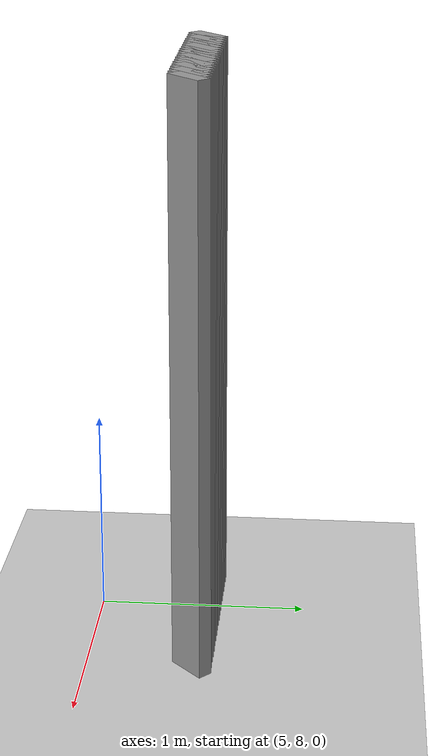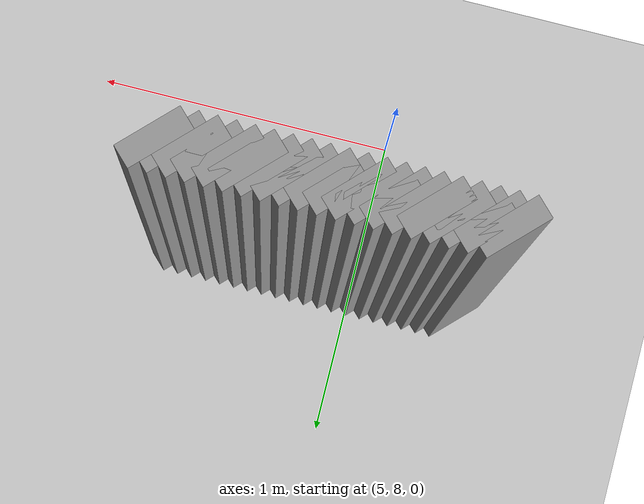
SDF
<sdf version="1.5">
 <world name="default">
  <include><uri>model://ground_plane</uri></include>
  <include><uri>model://sun</uri></include>
  <model name="grey_wall_4017">
   <static>1</static>
   <link name="link">
    <pose>4.65 8.5  1.4 0 0 -0.785398163397</pose>
    <collision name="collision"><geometry><box><size>0.0707106781187 .2  2.8</size></box></geometry></collision>
    <visual name="visual">
     <cast_shadows>0</cast_shadows>
     <geometry><box><size>0.0707106781187 .2  2.8</size></box></geometry>
     <material>
      <script>
       <uri>model://grey_wall/materials/scripts</uri>
       <uri>model://grey_wall/materials/textures</uri>
       <name>vrc/grey_wall</name>
      </script>
     </material>
    </visual>
   </link>
  </model>
  <model name="grey_wall_4018">
   <static>1</static>
   <link name="link">
    <pose>4.7 8.5  1.4 0 0 -0.785398163397</pose>
    <collision name="collision"><geometry><box><size>0.0707106781187 .2  2.8</size></box></geometry></collision>
    <visual name="visual">
     <cast_shadows>0</cast_shadows>
     <geometry><box><size>0.0707106781187 .2  2.8</size></box></geometry>
     <material>
      <script>
       <uri>model://grey_wall/materials/scripts</uri>
       <uri>model://grey_wall/materials/textures</uri>
       <name>vrc/grey_wall</name>
      </script>
     </material>
    </visual>
   </link>
  </model>
  <model name="grey_wall_4019">
   <static>1</static>
   <link name="link">
    <pose>4.75 8.5  1.4 0 0 -0.785398163397</pose>
    <collision name="collision"><geometry><box><size>0.0707106781187 .2  2.8</size></box></geometry></collision>
    <visual name="visual">
     <cast_shadows>0</cast_shadows>
     <geometry><box><size>0.0707106781187 .2  2.8</size></box></geometry>
     <material>
      <script>
       <uri>model://grey_wall/materials/scripts</uri>
       <uri>model://grey_wall/materials/textures</uri>
       <name>vrc/grey_wall</name>
      </script>
     </material>
    </visual>
   </link>
  </model>
  <model name="grey_wall_4020">
   <static>1</static>
   <link name="link">
    <pose>4.8 8.5  1.4 0 0 -0.785398163397</pose>
    <collision name="collision"><geometry><box><size>0.0707106781187 .2  2.8</size></box></geometry></collision>
    <visual name="visual">
     <cast_shadows>0</cast_shadows>
     <geometry><box><size>0.0707106781187 .2  2.8</size></box></geometry>
     <material>
      <script>
       <uri>model://grey_wall/materials/scripts</uri>
       <uri>model://grey_wall/materials/textures</uri>
       <name>vrc/grey_wall</name>
      </script>
     </material>
    </visual>
   </link>
  </model>
  <model name="grey_wall_4021">
   <static>1</static>
   <link name="link">
    <pose>4.85 8.5  1.4 0 0 -0.785398163397</pose>
    <collision name="collision"><geometry><box><size>0.0707106781187 .2  2.8</size></box></geometry></collision>
    <visual name="visual">
     <cast_shadows>0</cast_shadows>
     <geometry><box><size>0.0707106781187 .2  2.8</size></box></geometry>
     <material>
      <script>
       <uri>model://grey_wall/materials/scripts</uri>
       <uri>model://grey_wall/materials/textures</uri>
       <name>vrc/grey_wall</name>
      </script>
     </material>
    </visual>
   </link>
  </model>
  <model name="grey_wall_4022">
   <static>1</static>
   <link name="link">
    <pose>4.9 8.5  1.4 0 0 -0.785398163397</pose>
    <collision name="collision"><geometry><box><size>0.0707106781187 .2  2.8</size></box></geometry></collision>
    <visual name="visual">
     <cast_shadows>0</cast_shadows>
     <geometry><box><size>0.0707106781187 .2  2.8</size></box></geometry>
     <material>
      <script>
       <uri>model://grey_wall/materials/scripts</uri>
       <uri>model://grey_wall/materials/textures</uri>
       <name>vrc/grey_wall</name>
      </script>
     </material>
    </visual>
   </link>
  </model>
  <model name="grey_wall_4023">
   <static>1</static>
   <link name="link">
    <pose>4.95 8.5  1.4 0 0 -0.785398163397</pose>
    <collision name="collision"><geometry><box><size>0.0707106781187 .2  2.8</size></box></geometry></collision>
    <visual name="visual">
     <cast_shadows>0</cast_shadows>
     <geometry><box><size>0.0707106781187 .2  2.8</size></box></geometry>
     <material>
      <script>
       <uri>model://grey_wall/materials/scripts</uri>
       <uri>model://grey_wall/materials/textures</uri>
       <name>vrc/grey_wall</name>
      </script>
     </material>
    </visual>
   </link>
  </model>
  <model name="grey_wall_4024">
   <static>1</static>
   <link name="link">
    <pose>5.0 8.5  1.4 0 0 -0.785398163397</pose>
    <collision name="collision"><geometry><box><size>0.0707106781187 .2  2.8</size></box></geometry></collision>
    <visual name="visual">
     <cast_shadows>0</cast_shadows>
     <geometry><box><size>0.0707106781187 .2  2.8</size></box></geometry>
     <material>
      <script>
       <uri>model://grey_wall/materials/scripts</uri>
       <uri>model://grey_wall/materials/textures</uri>
       <name>vrc/grey_wall</name>
      </script>
     </material>
    </visual>
   </link>
  </model>
  <model name="grey_wall_4025">
   <static>1</static>
   <link name="link">
    <pose>5.05 8.5  1.4 0 0 -0.785398163397</pose>
    <collision name="collision"><geometry><box><size>0.0707106781187 .2  2.8</size></box></geometry></collision>
    <visual name="visual">
     <cast_shadows>0</cast_shadows>
     <geometry><box><size>0.0707106781187 .2  2.8</size></box></geometry>
     <material>
      <script>
       <uri>model://grey_wall/materials/scripts</uri>
       <uri>model://grey_wall/materials/textures</uri>
       <name>vrc/grey_wall</name>
      </script>
     </material>
    </visual>
   </link>
  </model>
  <model name="grey_wall_4026">
   <static>1</static>
   <link name="link">
    <pose>5.1 8.5  1.4 0 0 -0.785398163397</pose>
    <collision name="collision"><geometry><box><size>0.0707106781187 .2  2.8</size></box></geometry></collision>
    <visual name="visual">
     <cast_shadows>0</cast_shadows>
     <geometry><box><size>0.0707106781187 .2  2.8</size></box></geometry>
     <material>
      <script>
       <uri>model://grey_wall/materials/scripts</uri>
       <uri>model://grey_wall/materials/textures</uri>
       <name>vrc/grey_wall</name>
      </script>
     </material>
    </visual>
   </link>
  </model>
  <model name="grey_wall_4027">
   <static>1</static>
   <link name="link">
    <pose>5.15 8.5  1.4 0 0 -0.785398163397</pose>
    <collision name="collision"><geometry><box><size>0.0707106781187 .2  2.8</size></box></geometry></collision>
    <visual name="visual">
     <cast_shadows>0</cast_shadows>
     <geometry><box><size>0.0707106781187 .2  2.8</size></box></geometry>
     <material>
      <script>
       <uri>model://grey_wall/materials/scripts</uri>
       <uri>model://grey_wall/materials/textures</uri>
       <name>vrc/grey_wall</name>
      </script>
     </material>
    </visual>
   </link>
  </model>
  <model name="grey_wall_4028">
   <static>1</static>
   <link name="link">
    <pose>5.2 8.5  1.4 0 0 -0.785398163397</pose>
    <collision name="collision"><geometry><box><size>0.0707106781187 .2  2.8</size></box></geometry></collision>
    <visual name="visual">
     <cast_shadows>0</cast_shadows>
     <geometry><box><size>0.0707106781187 .2  2.8</size></box></geometry>
     <material>
      <script>
       <uri>model://grey_wall/materials/scripts</uri>
       <uri>model://grey_wall/materials/textures</uri>
       <name>vrc/grey_wall</name>
      </script>
     </material>
    </visual>
   </link>
  </model>
  <model name="grey_wall_4029">
   <static>1</static>
   <link name="link">
    <pose>5.25 8.5  1.4 0 0 -0.785398163397</pose>
    <collision name="collision"><geometry><box><size>0.0707106781187 .2  2.8</size></box></geometry></collision>
    <visual name="visual">
     <cast_shadows>0</cast_shadows>
     <geometry><box><size>0.0707106781187 .2  2.8</size></box></geometry>
     <material>
      <script>
       <uri>model://grey_wall/materials/scripts</uri>
       <uri>model://grey_wall/materials/textures</uri>
       <name>vrc/grey_wall</name>
      </script>
     </material>
    </visual>
   </link>
  </model>
  <model name="grey_wall_4030">
   <static>1</static>
   <link name="link">
    <pose>5.3 8.5  1.4 0 0 -0.785398163397</pose>
    <collision name="collision"><geometry><box><size>0.0707106781187 .2  2.8</size></box></geometry></collision>
    <visual name="visual">
     <cast_shadows>0</cast_shadows>
     <geometry><box><size>0.0707106781187 .2  2.8</size></box></geometry>
     <material>
      <script>
       <uri>model://grey_wall/materials/scripts</uri>
       <uri>model://grey_wall/materials/textures</uri>
       <name>vrc/grey_wall</name>
      </script>
     </material>
    </visual>
   </link>
  </model>
  <model name="grey_wall_4031">
   <static>1</static>
   <link name="link">
    <pose>5.35 8.5  1.4 0 0 -0.785398163397</pose>
    <collision name="collision"><geometry><box><size>0.0707106781187 .2  2.8</size></box></geometry></collision>
    <visual name="visual">
     <cast_shadows>0</cast_shadows>
     <geometry><box><size>0.0707106781187 .2  2.8</size></box></geometry>
     <material>
      <script>
       <uri>model://grey_wall/materials/scripts</uri>
       <uri>model://grey_wall/materials/textures</uri>
       <name>vrc/grey_wall</name>
      </script>
     </material>
    </visual>
   </link>
  </model>
  <model name="grey_wall_4032">
   <static>1</static>
   <link name="link">
    <pose>5.4 8.5  1.4 0 0 -0.785398163397</pose>
    <collision name="collision"><geometry><box><size>0.0707106781187 .2  2.8</size></box></geometry></collision>
    <visual name="visual">
     <cast_shadows>0</cast_shadows>
     <geometry><box><size>0.0707106781187 .2  2.8</size></box></geometry>
     <material>
      <script>
       <uri>model://grey_wall/materials/scripts</uri>
       <uri>model://grey_wall/materials/textures</uri>
       <name>vrc/grey_wall</name>
      </script>
     </material>
    </visual>
   </link>
  </model>
  <model name="grey_wall_4033">
   <static>1</static>
   <link name="link">
    <pose>5.45 8.5  1.4 0 0 -0.785398163397</pose>
    <collision name="collision"><geometry><box><size>0.0707106781187 .2  2.8</size></box></geometry></collision>
    <visual name="visual">
     <cast_shadows>0</cast_shadows>
     <geometry><box><size>0.0707106781187 .2  2.8</size></box></geometry>
     <material>
      <script>
       <uri>model://grey_wall/materials/scripts</uri>
       <uri>model://grey_wall/materials/textures</uri>
       <name>vrc/grey_wall</name>
      </script>
     </material>
    </visual>
   </link>
  </model>
  <model name="grey_wall_4034">
   <static>1</static>
   <link name="link">
    <pose>5.5 8.5  1.4 0 0 -0.785398163397</pose>
    <collision name="collision"><geometry><box><size>0.0707106781187 .2  2.8</size></box></geometry></collision>
    <visual name="visual">
     <cast_shadows>0</cast_shadows>
     <geometry><box><size>0.0707106781187 .2  2.8</size></box></geometry>
     <material>
      <script>
       <uri>model://grey_wall/materials/scripts</uri>
       <uri>model://grey_wall/materials/textures</uri>
       <name>vrc/grey_wall</name>
      </script>
     </material>
    </visual>
   </link>
  </model>
  <model name="grey_wall_4035">
   <static>1</static>
   <link name="link">
    <pose>5.55 8.5  1.4 0 0 -0.785398163397</pose>
    <collision name="collision"><geometry><box><size>0.0707106781187 .2  2.8</size></box></geometry></collision>
    <visual name="visual">
     <cast_shadows>0</cast_shadows>
     <geometry><box><size>0.0707106781187 .2  2.8</size></box></geometry>
     <material>
      <script>
       <uri>model://grey_wall/materials/scripts</uri>
       <uri>model://grey_wall/materials/textures</uri>
       <name>vrc/grey_wall</name>
      </script>
     </material>
    </visual>
   </link>
  </model>
  <model name="grey_wall_4036">
   <static>1</static>
   <link name="link">
    <pose>5.6 8.5  1.4 0 0 -0.785398163397</pose>
    <collision name="collision"><geometry><box><size>0.0707106781187 .2  2.8</size></box></geometry></collision>
    <visual name="visual">
     <cast_shadows>0</cast_shadows>
     <geometry><box><size>0.0707106781187 .2  2.8</size></box></geometry>
     <material>
      <script>
       <uri>model://grey_wall/materials/scripts</uri>
       <uri>model://grey_wall/materials/textures</uri>
       <name>vrc/grey_wall</name>
      </script>
     </material>
    </visual>
   </link>
  </model>
 </world>
</sdf>
